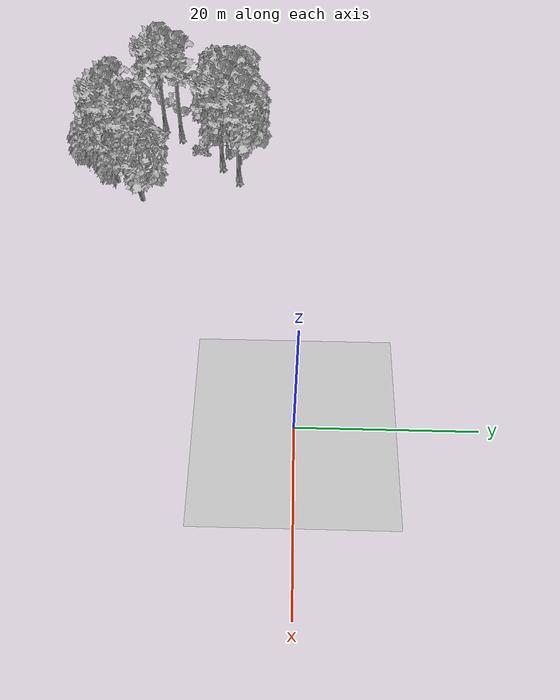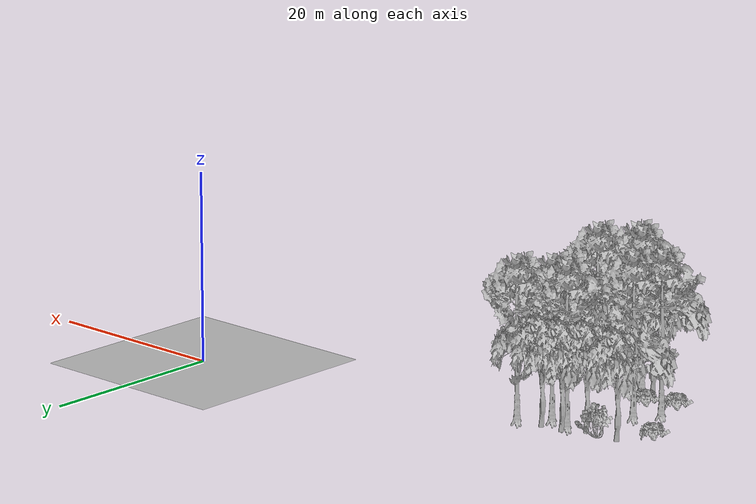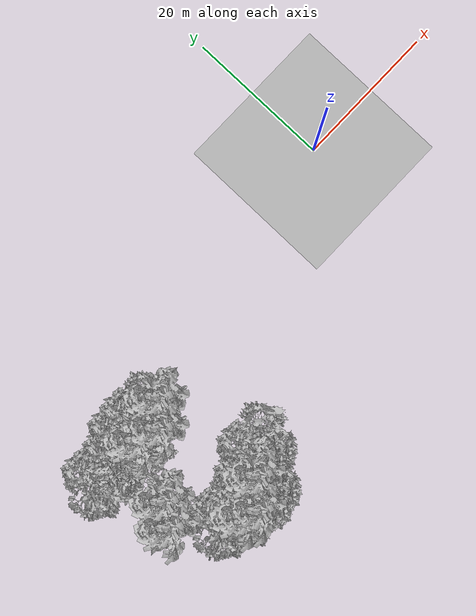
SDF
<sdf version="1.7">
 <world name="default">
  <model name="ground_plane">
   <static>1</static>
   <link name="link">
    <collision name="collision">
     <geometry><plane><normal>0 0 1</normal><size>100 100</size></plane></geometry>
     <surface><contact><ode><min_depth>0.01</min_depth><max_vel>0</max_vel></ode></contact></surface>
    </collision>
    <visual name="grass">
     <cast_shadows>0</cast_shadows>
     <geometry>
      <mesh>
       <scale>0.41000000000000003 0.41000000000000003 0.1</scale>
       <uri>file://grass_plane/meshes/grass_plane.dae</uri>
      </mesh>
     </geometry>
    </visual>
   </link>
  </model>
  <model name="Tree 8">
   <static>1</static>
   <pose>-34.397896939591064 -21.52071543263403 0 1.57079 -0 0</pose>
   <link name="link">
    <collision name="collision">
     <geometry><mesh><scale>5 5 5</scale><uri>model://tree_9/meshes/tree_9.obj</uri></mesh></geometry>
    </collision>
    <visual name="visual">
     <geometry><mesh><scale>5 5 5</scale><uri>model://tree_9/meshes/tree_9.obj</uri></mesh></geometry>
    </visual>
   </link>
  </model>
  <model name="Tree 38">
   <static>1</static>
   <pose>-34.988148311524874 -22.261455518859176 0 1.57079 -0 0</pose>
   <link name="link">
    <collision name="collision">
     <geometry><mesh><scale>5 5 5</scale><uri>model://tree_2/meshes/tree_2.obj</uri></mesh></geometry>
    </collision>
    <visual name="visual">
     <geometry><mesh><scale>5 5 5</scale><uri>model://tree_2/meshes/tree_2.obj</uri></mesh></geometry>
    </visual>
   </link>
  </model>
  <model name="Tree 39">
   <static>1</static>
   <pose>-47.19905034616801 -9.334872737619548 0 1.57079 -0 0</pose>
   <link name="link">
    <collision name="collision">
     <geometry><mesh><scale>5 5 5</scale><uri>model://tree_2/meshes/tree_2.obj</uri></mesh></geometry>
    </collision>
    <visual name="visual">
     <geometry><mesh><scale>5 5 5</scale><uri>model://tree_2/meshes/tree_2.obj</uri></mesh></geometry>
    </visual>
   </link>
  </model>
  <model name="Tree 129">
   <static>1</static>
   <pose>-32.275747871213056 -20.155272480157183 0 1.57079 -0 0</pose>
   <link name="link">
    <collision name="collision">
     <geometry><mesh><scale>5 5 5</scale><uri>model://tree_2/meshes/tree_2.obj</uri></mesh></geometry>
    </collision>
    <visual name="visual">
     <geometry><mesh><scale>5 5 5</scale><uri>model://tree_2/meshes/tree_2.obj</uri></mesh></geometry>
    </visual>
   </link>
  </model>
  <model name="Tree 141">
   <static>1</static>
   <pose>-45.21138667634014 -18.357033535448075 0 1.57079 -0 0</pose>
   <link name="link">
    <collision name="collision">
     <geometry><mesh><scale>5 5 5</scale><uri>model://tree_9/meshes/tree_9.obj</uri></mesh></geometry>
    </collision>
    <visual name="visual">
     <geometry><mesh><scale>5 5 5</scale><uri>model://tree_9/meshes/tree_9.obj</uri></mesh></geometry>
    </visual>
   </link>
  </model>
  <model name="Tree 146">
   <static>1</static>
   <pose>-40.4022281970056 -23.169692786425035 0 1.57079 -0 0</pose>
   <link name="link">
    <collision name="collision">
     <geometry><mesh><scale>5 5 5</scale><uri>model://tree_2/meshes/tree_2.obj</uri></mesh></geometry>
    </collision>
    <visual name="visual">
     <geometry><mesh><scale>5 5 5</scale><uri>model://tree_2/meshes/tree_2.obj</uri></mesh></geometry>
    </visual>
   </link>
  </model>
  <model name="Tree 154">
   <static>1</static>
   <pose>-43.60174938197179 -15.972993914055579 0 1.57079 -0 0</pose>
   <link name="link">
    <collision name="collision">
     <geometry><mesh><scale>5 5 5</scale><uri>model://tree_9/meshes/tree_9.obj</uri></mesh></geometry>
    </collision>
    <visual name="visual">
     <geometry><mesh><scale>5 5 5</scale><uri>model://tree_9/meshes/tree_9.obj</uri></mesh></geometry>
    </visual>
   </link>
  </model>
  <model name="Tree 200">
   <static>1</static>
   <pose>-43.483028208219 -9.218335727219674 0 1.57079 -0 0</pose>
   <link name="link">
    <collision name="collision">
     <geometry><mesh><scale>5 5 5</scale><uri>model://tree_2/meshes/tree_2.obj</uri></mesh></geometry>
    </collision>
    <visual name="visual">
     <geometry><mesh><scale>5 5 5</scale><uri>model://tree_2/meshes/tree_2.obj</uri></mesh></geometry>
    </visual>
   </link>
  </model>
  <model name="Tree 211">
   <static>1</static>
   <pose>-41.3844225548065 -7.9648437891661885 0 1.57079 -0 0</pose>
   <link name="link">
    <collision name="collision">
     <geometry><mesh><scale>5 5 5</scale><uri>model://tree_2/meshes/tree_2.obj</uri></mesh></geometry>
    </collision>
    <visual name="visual">
     <geometry><mesh><scale>5 5 5</scale><uri>model://tree_2/meshes/tree_2.obj</uri></mesh></geometry>
    </visual>
   </link>
  </model>
  <model name="Tree 215">
   <static>1</static>
   <pose>-35.40312318519553 -23.79344273532743 0 1.57079 -0 0</pose>
   <link name="link">
    <collision name="collision">
     <geometry><mesh><scale>5 5 5</scale><uri>model://tree_2/meshes/tree_2.obj</uri></mesh></geometry>
    </collision>
    <visual name="visual">
     <geometry><mesh><scale>5 5 5</scale><uri>model://tree_2/meshes/tree_2.obj</uri></mesh></geometry>
    </visual>
   </link>
  </model>
  <model name="Tree 228">
   <static>1</static>
   <pose>-38.52489593198301 -23.488110629111738 0 1.57079 -0 0</pose>
   <link name="link">
    <collision name="collision">
     <geometry><mesh><scale>5 5 5</scale><uri>model://tree_9/meshes/tree_9.obj</uri></mesh></geometry>
    </collision>
    <visual name="visual">
     <geometry><mesh><scale>5 5 5</scale><uri>model://tree_9/meshes/tree_9.obj</uri></mesh></geometry>
    </visual>
   </link>
  </model>
  <model name="Tree 289">
   <static>1</static>
   <pose>-37.089750705977536 -24.213443097268684 0 1.57079 -0 0</pose>
   <link name="link">
    <collision name="collision">
     <geometry><mesh><scale>5 5 5</scale><uri>model://tree_9/meshes/tree_9.obj</uri></mesh></geometry>
    </collision>
    <visual name="visual">
     <geometry><mesh><scale>5 5 5</scale><uri>model://tree_9/meshes/tree_9.obj</uri></mesh></geometry>
    </visual>
   </link>
  </model>
  <model name="Tree 320">
   <static>1</static>
   <pose>-38.26942411183056 -9.980608833830765 0 1.57079 -0 0</pose>
   <link name="link">
    <collision name="collision">
     <geometry><mesh><scale>5 5 5</scale><uri>model://tree_9/meshes/tree_9.obj</uri></mesh></geometry>
    </collision>
    <visual name="visual">
     <geometry><mesh><scale>5 5 5</scale><uri>model://tree_9/meshes/tree_9.obj</uri></mesh></geometry>
    </visual>
   </link>
  </model>
  <model name="Tree 410">
   <static>1</static>
   <pose>-35.76669107110097 -7.626636118009991 0 1.57079 -0 0</pose>
   <link name="link">
    <collision name="collision">
     <geometry><mesh><scale>5 5 5</scale><uri>model://tree_9/meshes/tree_9.obj</uri></mesh></geometry>
    </collision>
    <visual name="visual">
     <geometry><mesh><scale>5 5 5</scale><uri>model://tree_9/meshes/tree_9.obj</uri></mesh></geometry>
    </visual>
   </link>
  </model>
  <model name="Tree 434">
   <static>1</static>
   <pose>-39.04657996201751 -7.706936970522683 0 1.57079 -0 0</pose>
   <link name="link">
    <collision name="collision">
     <geometry><mesh><scale>5 5 5</scale><uri>model://tree_2/meshes/tree_2.obj</uri></mesh></geometry>
    </collision>
    <visual name="visual">
     <geometry><mesh><scale>5 5 5</scale><uri>model://tree_2/meshes/tree_2.obj</uri></mesh></geometry>
    </visual>
   </link>
  </model>
  <model name="Tree 456">
   <static>1</static>
   <pose>-40.735341182523264 -9.325173269205031 0 1.57079 -0 0</pose>
   <link name="link">
    <collision name="collision">
     <geometry><mesh><scale>5 5 5</scale><uri>model://tree_9/meshes/tree_9.obj</uri></mesh></geometry>
    </collision>
    <visual name="visual">
     <geometry><mesh><scale>5 5 5</scale><uri>model://tree_9/meshes/tree_9.obj</uri></mesh></geometry>
    </visual>
   </link>
  </model>
  <model name="Tree 493">
   <static>1</static>
   <pose>-37.437503252075324 -24.354107164444194 0 1.57079 -0 0</pose>
   <link name="link">
    <collision name="collision">
     <geometry><mesh><scale>5 5 5</scale><uri>model://tree_2/meshes/tree_2.obj</uri></mesh></geometry>
    </collision>
    <visual name="visual">
     <geometry><mesh><scale>5 5 5</scale><uri>model://tree_2/meshes/tree_2.obj</uri></mesh></geometry>
    </visual>
   </link>
  </model>
  <model name="Bush 16">
   <static>1</static>
   <pose>-41.52615126953099 -13.076223945131204 0 1.57079 -0 0</pose>
   <link name="link">
    <collision name="collision">
     <geometry><mesh><scale>2 2 2</scale><uri>model://bush_2/meshes/bush_2.obj</uri></mesh></geometry>
    </collision>
    <visual name="visual">
     <geometry><mesh><scale>5 5 5</scale><uri>model://bush_2/meshes/bush_2.obj</uri></mesh></geometry>
    </visual>
   </link>
  </model>
  <model name="Bush 18">
   <static>1</static>
   <pose>-44.928348014402125 -8.75800798121157 0 1.57079 -0 0</pose>
   <link name="link">
    <collision name="collision">
     <geometry><mesh><scale>2 2 2</scale><uri>model://bush_4/meshes/bush_4.obj</uri></mesh></geometry>
    </collision>
    <visual name="visual">
     <geometry><mesh><scale>5 5 5</scale><uri>model://bush_4/meshes/bush_4.obj</uri></mesh></geometry>
    </visual>
   </link>
  </model>
  <model name="Bush 33">
   <static>1</static>
   <pose>-41.12690799888392 -21.208871196566715 0 1.57079 -0 0</pose>
   <link name="link">
    <collision name="collision">
     <geometry><mesh><scale>2 2 2</scale><uri>model://bush_2/meshes/bush_2.obj</uri></mesh></geometry>
    </collision>
    <visual name="visual">
     <geometry><mesh><scale>5 5 5</scale><uri>model://bush_2/meshes/bush_2.obj</uri></mesh></geometry>
    </visual>
   </link>
  </model>
  <model name="Bush 76">
   <static>1</static>
   <pose>-48.234112251932885 -13.660294245973759 0 1.57079 -0 0</pose>
   <link name="link">
    <collision name="collision">
     <geometry><mesh><scale>2 2 2</scale><uri>model://bush_2/meshes/bush_2.obj</uri></mesh></geometry>
    </collision>
    <visual name="visual">
     <geometry><mesh><scale>5 5 5</scale><uri>model://bush_2/meshes/bush_2.obj</uri></mesh></geometry>
    </visual>
   </link>
  </model>
  <model name="Bush 112">
   <static>1</static>
   <pose>-44.11429867261864 -22.3754106576188 0 1.57079 -0 0</pose>
   <link name="link">
    <collision name="collision">
     <geometry><mesh><scale>2 2 2</scale><uri>model://bush_2/meshes/bush_2.obj</uri></mesh></geometry>
    </collision>
    <visual name="visual">
     <geometry><mesh><scale>5 5 5</scale><uri>model://bush_2/meshes/bush_2.obj</uri></mesh></geometry>
    </visual>
   </link>
  </model>
 </world>
</sdf>
